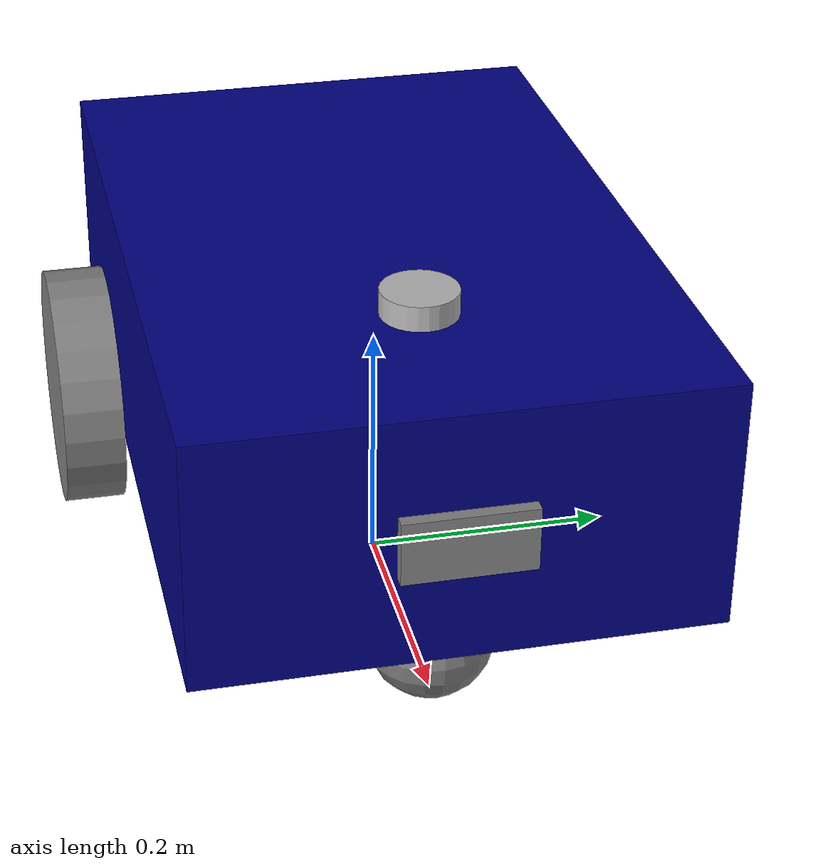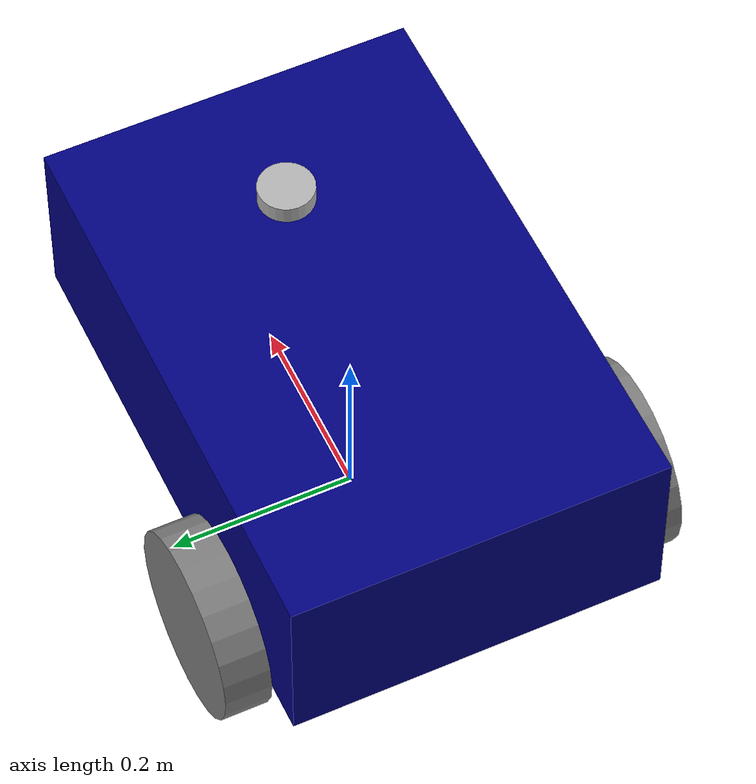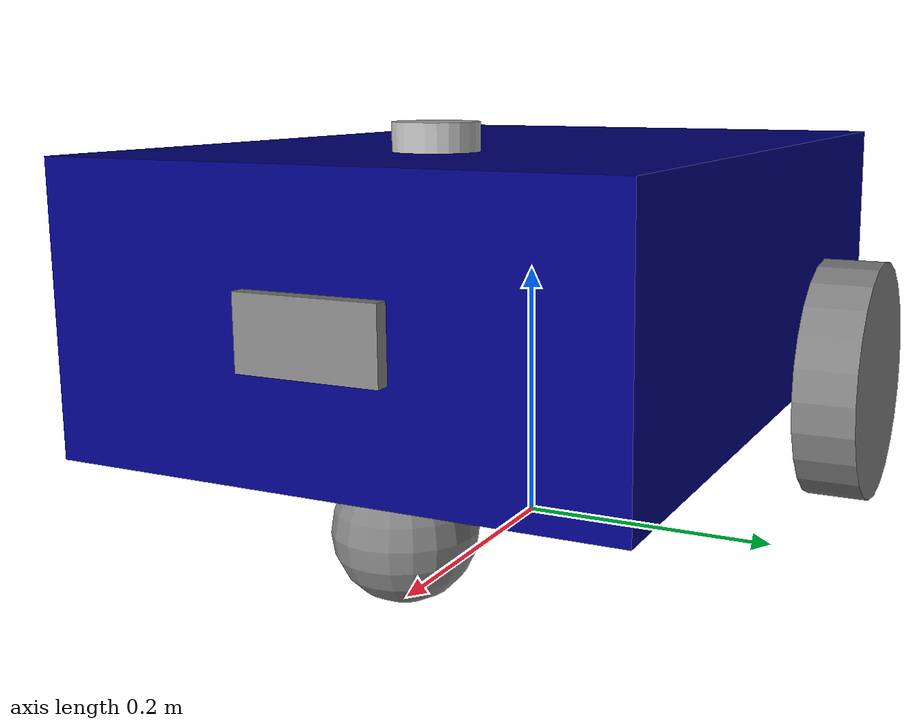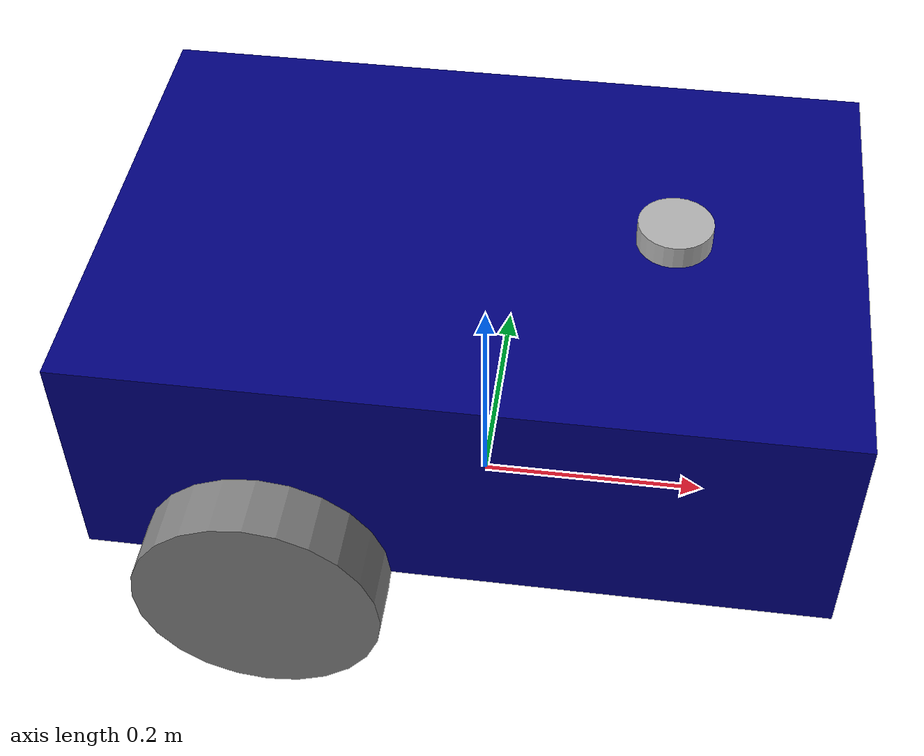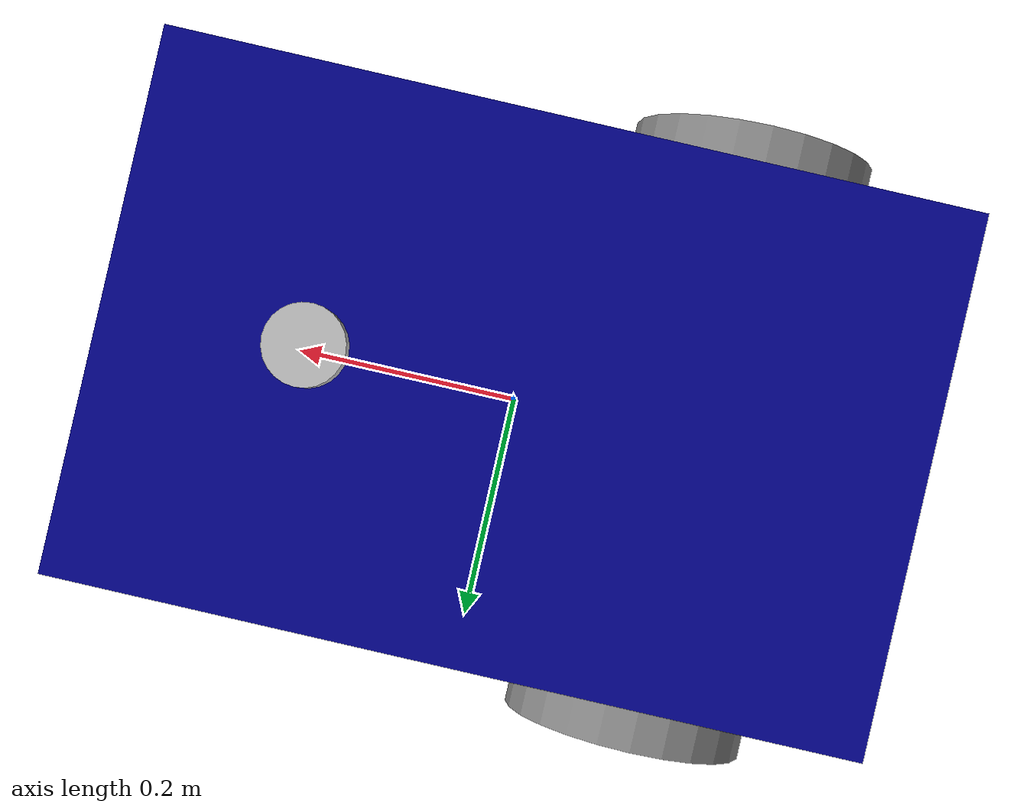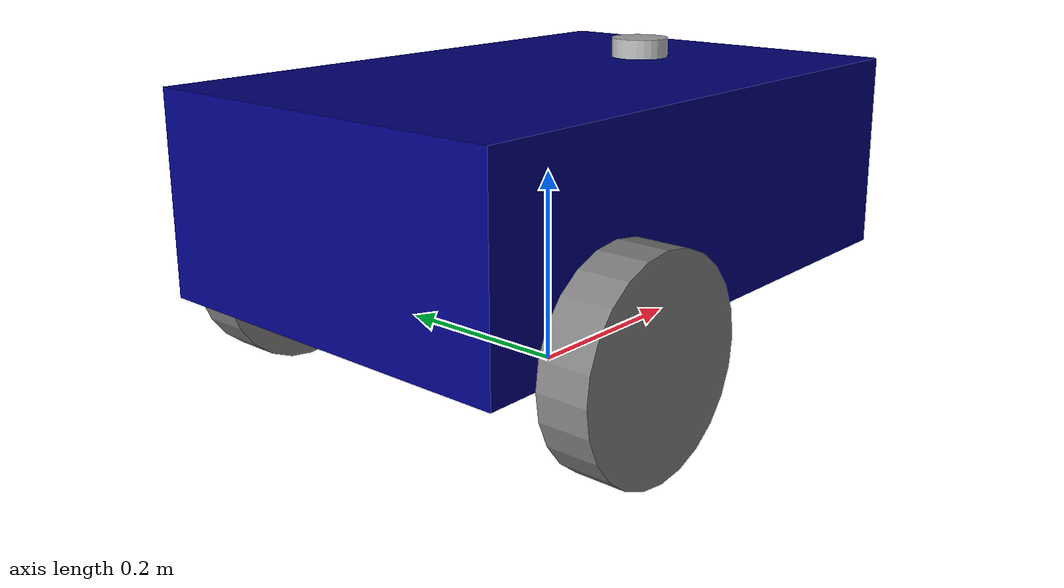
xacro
<?xml version="1.0"?>
<robot name="my_robot" xmlns:xacro="http://www.ros.org/wiki/xacro">

    <material name="blue">
        <color rgba="0 0 0.5 1" />
    </material>

    <material name="grey">
        <color rgba="0.5 0.5 0.5 1" />
    </material>

    <material name="orange">
        <color rgba="1.0 0.5 0 1" />
    </material>

    <material name="yellow">
        <color rgba="1.0 1.0 0 1" />
    </material>

    <xacro:macro name="box_inertia" params="m x y z o_xyz o_rpy">
        <inertial>
            <mass value="${m}" />
            <origin xyz="${o_xyz}" rpy="${o_rpy}" />
            <inertia ixx="${(m/12) * (y*y + z*z)}" ixy="0" ixz="0"
                     iyy="${(m/12) * (x*x + z*z)}" iyz="0"
                     izz="${(m/12) * (x*x + y*y)}" />
        </inertial>
    </xacro:macro>

    <xacro:macro name="cylinder_inertia" params="m r l o_xyz o_rpy">
        <inertial>
            <mass value="${m}" />
            <origin xyz="${o_xyz}" rpy="${o_rpy}" />
            <inertia ixx="${(m/12) * (3*r*r + l*l)}" ixy="0" ixz="0"
                     iyy="${(m/12) * (3*r*r + l*l)}" iyz="0"
                     izz="${(m/2) * (r*r)}" />
        </inertial>
    </xacro:macro>

    <xacro:macro name="sphere_inertia" params="m r o_xyz o_rpy">
        <inertial>
            <mass value="${m}" />
            <origin xyz="${o_xyz}" rpy="${o_rpy}" />
            <inertia ixx="${(2/5) * m * r * r}" ixy="0" ixz="0"
                     iyy="${(2/5) * m * r * r}" iyz="0"
                     izz="${(2/5) * m * r * r}" />
        </inertial>
    </xacro:macro>

    <xacro:property name="base_length" value="0.6" />
    <xacro:property name="base_width" value="0.4" />
    <xacro:property name="base_height" value="0.2" />
    <xacro:property name="wheel_radius" value="0.1" />
    <xacro:property name="wheel_length" value="0.05" />

    <link name="base_footprint" />

    <link name="base_link">
        <visual>
            <geometry>
                <box size="${base_length} ${base_width} ${base_height}" />
            </geometry>
            <origin xyz="0 0 ${base_height / 2.0}" rpy="0 0 0" />
            <material name="blue" />
        </visual>
        <collision>
            <geometry>
                <box size="${base_length} ${base_width} ${base_height}" />
            </geometry>
            <origin xyz="0 0 ${base_height / 2.0}" rpy="0 0 0" />
        </collision>
        <xacro:box_inertia m="5.0" x="${base_length}" y="${base_width}" z="${base_height}"
                           o_xyz="0 0 ${base_height / 2.0}" o_rpy="0 0 0" />
    </link>

    <xacro:macro name="wheel_link" params="prefix">
        <link name="${prefix}_wheel_link">
            <visual>
                <geometry>
                    <cylinder radius="${wheel_radius}" length="${wheel_length}" />
                </geometry>
                <origin xyz="0 0 0" rpy="${pi / 2.0} 0 0" />
                <material name="grey" />
            </visual>
            <collision>
                <geometry>
                    <sphere radius="${wheel_radius}" />
                </geometry>
                <origin xyz="0 0 0" rpy="0 0 0" />
            </collision>
            <xacro:cylinder_inertia m="1.0" r="${wheel_radius}" l="${wheel_length}"
                                    o_xyz="0 0 0" o_rpy="${pi / 2.0} 0 0" />
        </link>
    </xacro:macro>

    <xacro:wheel_link prefix="right" />
    <xacro:wheel_link prefix="left" />

    <link name="caster_wheel_link">
        <visual>
            <geometry>
                <sphere radius="${wheel_radius / 2.0}" />
            </geometry>
            <origin xyz="0 0 0" rpy="0 0 0" />
            <material name="grey" />
        </visual>
        <collision>
            <geometry>
                <sphere radius="${wheel_radius / 2.0}" />
            </geometry>
            <origin xyz="0 0 0" rpy="0 0 0" />
        </collision>
        <xacro:sphere_inertia m="0.5" r="${wheel_radius / 2.0}"
                              o_xyz="0 0 0" o_rpy="0 0 0" />
    </link>

    <joint name="base_joint" type="fixed">
        <parent link="base_footprint" />
        <child link="base_link" />
        <origin xyz="0 0 ${wheel_radius}" rpy="0 0 0"/>
    </joint>

    <joint name="base_right_wheel_joint" type="continuous">
        <parent link="base_link" />
        <child link="right_wheel_link" />
        <origin xyz="${-base_length / 4.0} ${-(base_width + wheel_length) / 2.0} 0" rpy="0 0 0" />
        <axis xyz="0 1 0" />
    </joint>

    <joint name="base_left_wheel_joint" type="continuous">
        <parent link="base_link" />
        <child link="left_wheel_link" />
        <origin xyz="${-base_length / 4.0} ${(base_width + wheel_length) / 2.0} 0" rpy="0 0 0" />
        <axis xyz="0 1 0" />
    </joint>

    <joint name="base_caster_wheel_joint" type="fixed">
        <parent link="base_link" />
        <child link="caster_wheel_link" />
        <origin xyz="${base_length / 3.0} 0 ${-wheel_radius / 2.0}" rpy="0 0 0" />
    </joint>

    <gazebo reference="caster_wheel_link">
        <mu1 value="0.1" />
        <mu2 value="0.1" />
    </gazebo>

    <gazebo>
        <plugin
            filename="gz-sim-diff-drive-system"
            name="gz::sim::systems::DiffDrive">
            <left_joint>base_left_wheel_joint</left_joint>
            <right_joint>base_right_wheel_joint</right_joint>
            <wheel_separation>0.45</wheel_separation>
            <wheel_radius>0.1</wheel_radius>
            <frame_id>odom</frame_id>
            <child_frame_id>base_footprint</child_frame_id>

            <odom_topic>odom</odom_topic>
            <publish_odom_tf>true</publish_odom_tf>
        </plugin>
    </gazebo>

    <gazebo>
        <plugin
            filename="gz-sim-joint-state-publisher-system"
            name="gz::sim::systems::JointStatePublisher">
            <joint_name>base_left_wheel_joint</joint_name>
            <joint_name>base_right_wheel_joint</joint_name>
        </plugin>
    </gazebo>

    <xacro:property name="camera_length" value="0.01" />
    <xacro:property name="camera_width" value="0.1" />
    <xacro:property name="camera_height" value="0.05" />

    <link name="camera_link">
        <visual>
            <geometry>
                <box size="${camera_length} ${camera_width} ${camera_height}" />
            </geometry>
            <material name="grey" />
        </visual>
        <collision>
            <geometry>
                <box size="${camera_length} ${camera_width} ${camera_height}" />
            </geometry>
        </collision>
        <xacro:box_inertia m="0.1" x="${camera_length}" y="${camera_width}" z="${camera_height}"
                           o_xyz="0 0 0" o_rpy="0 0 0" />
    </link>

    <joint name="base_camera_joint" type="fixed">
        <parent link="base_link" />
        <child link="camera_link" />
        <origin xyz="${(base_length + camera_length) / 2.0} 0 ${base_height / 2.0}" rpy="0 0 0" />
    </joint>

    <link name="camera_link_optical" />

    <joint name="camera_optical_joint" type="fixed">
        <origin xyz="0 0 0" rpy="${-pi/2} 0 ${-pi/2}"/>
        <parent link="camera_link"/>
        <child link="camera_link_optical"/>
    </joint>

    <gazebo reference="camera_link">
        <sensor name="camera" type="camera">
            <camera>
                <horizontal_fov>1.3962634</horizontal_fov>
                <image>
                    <width>640</width>
                    <height>480</height>
                    <format>R8G8B8</format>
                </image>
                <clip>
                    <near>0.1</near>
                    <far>15</far>
                </clip>
                <noise>
                    <type>gaussian</type>
                    <mean>0.0</mean>
                    <stddev>0.007</stddev>
                </noise>
                <optical_frame_id>camera_link_optical</optical_frame_id>
                <camera_info_topic>camera/camera_info</camera_info_topic>
            </camera>
            <always_on>1</always_on>
            <update_rate>20</update_rate>
            <visualize>true</visualize>
            <topic>camera/image_raw</topic>
        </sensor>
    </gazebo>

        <!-- ================= LIDAR LINK ================= -->
    <link name="lidar_link">
        <inertial>
            <mass value="0.1"/>
            <origin xyz="0 0 0" rpy="0 0 0"/>
            <inertia ixx="1e-4" ixy="0" ixz="0"
                     iyy="1e-4" iyz="0"
                     izz="1e-4"/>
        </inertial>

        <visual>
            <origin xyz="0 0 0" rpy="0 0 0"/>
            <geometry>
                <cylinder radius="0.03" length="0.04"/>
            </geometry>
        </visual>

        <collision>
            <origin xyz="0 0 0" rpy="0 0 0"/>
            <geometry>
                <cylinder radius="0.03" length="0.04"/>
            </geometry>
        </collision>
    </link>

    <!-- ================= LIDAR JOINT ================= -->
    <joint name="lidar_joint" type="fixed">
        <parent link="base_link"/>
        <child link="lidar_link"/>
        <!-- Adjust mounting position if needed -->
        <origin xyz="0.15 0 0.20" rpy="0 0 0"/>
    </joint>

    <!-- ================= GAZEBO HARMONIC SENSOR ================= -->
    <gazebo reference="lidar_link">
        <sensor name="lidar_sensor" type="gpu_lidar">
            <topic>scan</topic>
            <update_rate>10</update_rate>
            <always_on>true</always_on>
            <visualize>false</visualize>

            <ray>
                <scan>
                    <horizontal>
                        <samples>720</samples>
                        <resolution>1</resolution>
                        <min_angle>-3.14159</min_angle>
                        <max_angle>3.14159</max_angle>
                    </horizontal>
                    <vertical>
                        <samples>1</samples>
                        <resolution>1</resolution>
                        <min_angle>0</min_angle>
                        <max_angle>0</max_angle>
                    </vertical>
                </scan>

                <range>
                    <min>0.2</min>
                    <max>30</max>
                    <resolution>0.013</resolution>
                </range>
            </ray>

            <gz_frame_id>lidar_link</gz_frame_id>
        </sensor>
    </gazebo>

</robot>
